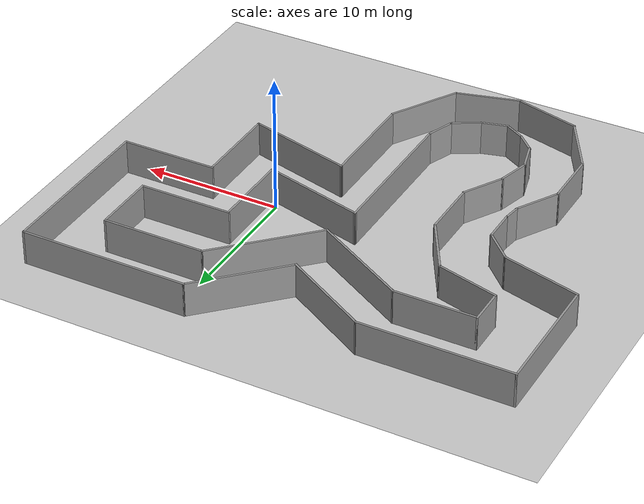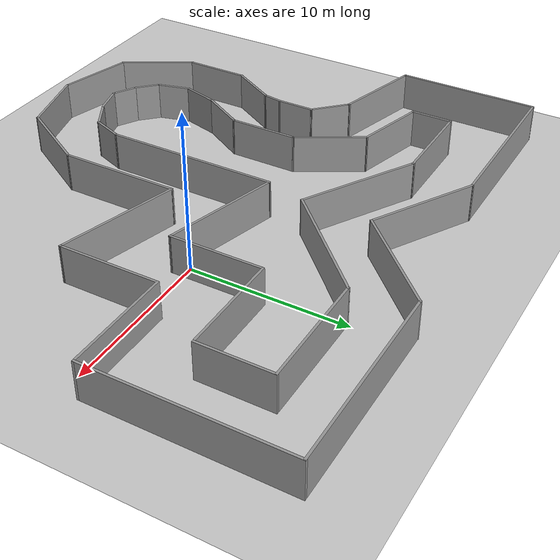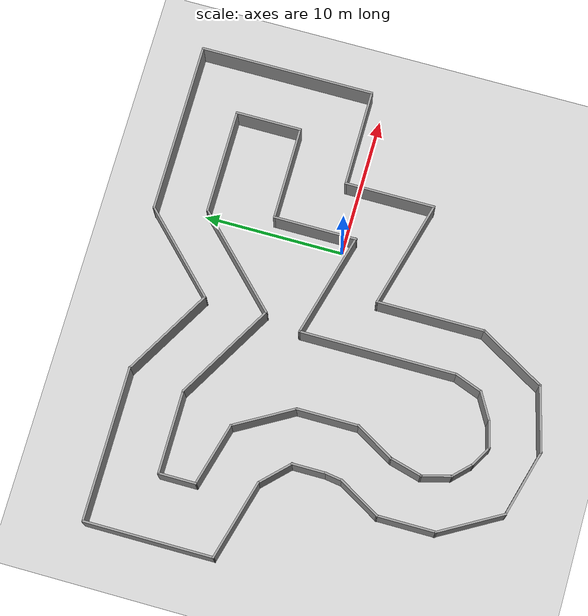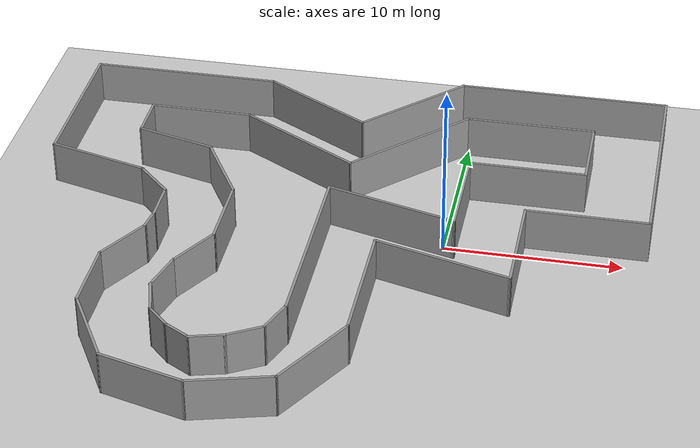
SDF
<sdf version="1.7">
 <world name="default">
  <model name="ground_plane">
   <static>1</static>
   <link name="link">
    <collision name="collision">
     <geometry><plane><normal>0 0 1</normal><size>100 100</size></plane></geometry>
     <surface><friction><ode><mu>100</mu><mu2>50</mu2></ode></friction></surface>
    </collision>
    <visual name="visual">
     <cast_shadows>0</cast_shadows>
     <geometry><plane><normal>0 0 1</normal><size>100 100</size></plane></geometry>
     <material>
      <script><uri>file://media/materials/scripts/gazebo.material</uri><name>Gazebo/Grey</name></script>
     </material>
    </visual>
   </link>
  </model>
  <model name="map2-Scaled2.5">
   <pose>-5.93751 -1.70962 0 0 -0 0</pose>
   <link name="Wall_39">
    <collision name="Wall_39_Collision">
     <geometry><box><size>6 0.15 2.5</size></box></geometry>
     <pose>0 0 1.25 0 -0 0</pose>
    </collision>
    <visual name="Wall_39_Visual">
     <pose>0 0 1.25 0 -0 0</pose>
     <geometry><box><size>6 0.15 2.5</size></box></geometry>
     <material>
      <script><uri>file://media/materials/scripts/gazebo.material</uri><name>Gazebo/Grey</name></script>
      <ambient>1 1 1 1</ambient>
     </material>
     <meta><layer>0</layer></meta>
    </visual>
    <pose>-14.3142 3.53465 0 0 -0 2.87979</pose>
   </link>
   <link name="Wall_40">
    <collision name="Wall_40_Collision">
     <geometry><box><size>9.25 0.15 2.5</size></box></geometry>
     <pose>0 0 1.25 0 -0 0</pose>
    </collision>
    <visual name="Wall_40_Visual">
     <pose>0 0 1.25 0 -0 0</pose>
     <geometry><box><size>9.25 0.15 2.5</size></box></geometry>
     <material>
      <script><uri>file://media/materials/scripts/gazebo.material</uri><name>Gazebo/Grey</name></script>
      <ambient>1 1 1 1</ambient>
     </material>
     <meta><layer>0</layer></meta>
    </visual>
    <pose>-17.1396 8.8417 0 0 -0 1.5708</pose>
   </link>
   <link name="Wall_41">
    <collision name="Wall_41_Collision">
     <geometry><box><size>11 0.15 2.5</size></box></geometry>
     <pose>0 0 1.25 0 -0 0</pose>
    </collision>
    <visual name="Wall_41_Visual">
     <pose>0 0 1.25 0 -0 0</pose>
     <geometry><box><size>11 0.15 2.5</size></box></geometry>
     <material>
      <script><uri>file://media/materials/scripts/gazebo.material</uri><name>Gazebo/Grey</name></script>
      <ambient>1 1 1 1</ambient>
     </material>
     <meta><layer>0</layer></meta>
    </visual>
    <pose>-11.7146 13.3917 0 0 -0 0</pose>
   </link>
   <link name="Wall_42">
    <collision name="Wall_42_Collision">
     <geometry><box><size>7.25 0.15 2.5</size></box></geometry>
     <pose>0 0 1.25 0 -0 0</pose>
    </collision>
    <visual name="Wall_42_Visual">
     <pose>0 0 1.25 0 -0 0</pose>
     <geometry><box><size>7.25 0.15 2.5</size></box></geometry>
     <material>
      <script><uri>file://media/materials/scripts/gazebo.material</uri><name>Gazebo/Grey</name></script>
      <ambient>1 1 1 1</ambient>
     </material>
     <meta><layer>0</layer></meta>
    </visual>
    <pose>-3.21519 11.6167 0 0 -0 -0.523599</pose>
   </link>
   <link name="Wall_43">
    <collision name="Wall_43_Collision">
     <geometry><box><size>7.5 0.15 2.5</size></box></geometry>
     <pose>0 0 1.25 0 -0 0</pose>
    </collision>
    <visual name="Wall_43_Visual">
     <pose>0 0 1.25 0 -0 0</pose>
     <geometry><box><size>7.5 0.15 2.5</size></box></geometry>
     <material>
      <script><uri>file://media/materials/scripts/gazebo.material</uri><name>Gazebo/Grey</name></script>
      <ambient>1 1 1 1</ambient>
     </material>
     <meta><layer>0</layer></meta>
    </visual>
    <pose>2.45782 12.4403 0 0 -0 0.785398</pose>
   </link>
   <link name="Wall_44">
    <collision name="Wall_44_Collision">
     <geometry><box><size>12.25 0.15 2.5</size></box></geometry>
     <pose>0 0 1.25 0 -0 0</pose>
    </collision>
    <visual name="Wall_44_Visual">
     <pose>0 0 1.25 0 -0 0</pose>
     <geometry><box><size>12.25 0.15 2.5</size></box></geometry>
     <material>
      <script><uri>file://media/materials/scripts/gazebo.material</uri><name>Gazebo/Grey</name></script>
      <ambient>1 1 1 1</ambient>
     </material>
     <meta><layer>0</layer></meta>
    </visual>
    <pose>11.1064 15.0389 0 0 -0 0</pose>
   </link>
   <link name="Wall_45">
    <collision name="Wall_45_Collision">
     <geometry><box><size>12.5 0.15 2.5</size></box></geometry>
     <pose>0 0 1.25 0 -0 0</pose>
    </collision>
    <visual name="Wall_45_Visual">
     <pose>0 0 1.25 0 -0 0</pose>
     <geometry><box><size>12.5 0.15 2.5</size></box></geometry>
     <material>
      <script><uri>file://media/materials/scripts/gazebo.material</uri><name>Gazebo/Grey</name></script>
      <ambient>1 1 1 1</ambient>
     </material>
     <meta><layer>0</layer></meta>
    </visual>
    <pose>17.1564 8.86393 0 0 -0 -1.5708</pose>
   </link>
   <link name="Wall_46">
    <collision name="Wall_46_Collision">
     <geometry><box><size>7 0.15 2.5</size></box></geometry>
     <pose>0 0 1.25 0 -0 0</pose>
    </collision>
    <visual name="Wall_46_Visual">
     <pose>0 0 1.25 0 -0 0</pose>
     <geometry><box><size>7 0.15 2.5</size></box></geometry>
     <material>
      <script><uri>file://media/materials/scripts/gazebo.material</uri><name>Gazebo/Grey</name></script>
      <ambient>1 1 1 1</ambient>
     </material>
     <meta><layer>0</layer></meta>
    </visual>
    <pose>13.7314 2.68893 0 0 -0 3.14159</pose>
   </link>
   <link name="Wall_47">
    <collision name="Wall_47_Collision">
     <geometry><box><size>6.5 0.15 2.5</size></box></geometry>
     <pose>0 0 1.25 0 -0 0</pose>
    </collision>
    <visual name="Wall_47_Visual">
     <pose>0 0 1.25 0 -0 0</pose>
     <geometry><box><size>6.5 0.15 2.5</size></box></geometry>
     <material>
      <script><uri>file://media/materials/scripts/gazebo.material</uri><name>Gazebo/Grey</name></script>
      <ambient>1 1 1 1</ambient>
     </material>
     <meta><layer>0</layer></meta>
    </visual>
    <pose>10.3064 -0.486068 0 0 -0 -1.5708</pose>
   </link>
   <link name="Wall_48">
    <collision name="Wall_48_Collision">
     <geometry><box><size>8 0.15 2.5</size></box></geometry>
     <pose>0 0 1.25 0 -0 0</pose>
    </collision>
    <visual name="Wall_48_Visual">
     <pose>0 0 1.25 0 -0 0</pose>
     <geometry><box><size>8 0.15 2.5</size></box></geometry>
     <material>
      <script><uri>file://media/materials/scripts/gazebo.material</uri><name>Gazebo/Grey</name></script>
      <ambient>1 1 1 1</ambient>
     </material>
     <meta><layer>0</layer></meta>
    </visual>
    <pose>6.51518 -2.6452 0 0 -0 2.87979</pose>
   </link>
   <link name="Wall_49">
    <collision name="Wall_49_Collision">
     <geometry><box><size>7.75 0.15 2.5</size></box></geometry>
     <pose>0 0 1.25 0 -0 0</pose>
    </collision>
    <visual name="Wall_49_Visual">
     <pose>0 0 1.25 0 -0 0</pose>
     <geometry><box><size>7.75 0.15 2.5</size></box></geometry>
     <material>
      <script><uri>file://media/materials/scripts/gazebo.material</uri><name>Gazebo/Grey</name></script>
      <ambient>1 1 1 1</ambient>
     </material>
     <meta><layer>0</layer></meta>
    </visual>
    <pose>2.72392 -5.42934 0 0 -0 -1.5708</pose>
   </link>
   <link name="Wall_50">
    <collision name="Wall_50_Collision">
     <geometry><box><size>5.5 0.15 2.5</size></box></geometry>
     <pose>0 0 1.25 0 -0 0</pose>
    </collision>
    <visual name="Wall_50_Visual">
     <pose>0 0 1.25 0 -0 0</pose>
     <geometry><box><size>5.5 0.15 2.5</size></box></geometry>
     <material>
      <script><uri>file://media/materials/scripts/gazebo.material</uri><name>Gazebo/Grey</name></script>
      <ambient>1 1 1 1</ambient>
     </material>
     <meta><layer>0</layer></meta>
    </visual>
    <pose>1.38642 -11.546 0 0 -0 -2.0944</pose>
   </link>
   <link name="Wall_51">
    <collision name="Wall_51_Collision">
     <geometry><box><size>4.75 0.15 2.5</size></box></geometry>
     <pose>0 0 1.25 0 -0 0</pose>
    </collision>
    <visual name="Wall_51_Visual">
     <pose>0 0 1.25 0 -0 0</pose>
     <geometry><box><size>4.75 0.15 2.5</size></box></geometry>
     <material>
      <script><uri>file://media/materials/scripts/gazebo.material</uri><name>Gazebo/Grey</name></script>
      <ambient>1 1 1 1</ambient>
     </material>
     <meta><layer>0</layer></meta>
    </visual>
    <pose>-2.17271 -14.4579 0 0 -0 -2.87979</pose>
   </link>
   <link name="Wall_52">
    <collision name="Wall_52_Collision">
     <geometry><box><size>5 0.15 2.5</size></box></geometry>
     <pose>0 0 1.25 0 -0 0</pose>
    </collision>
    <visual name="Wall_52_Visual">
     <pose>0 0 1.25 0 -0 0</pose>
     <geometry><box><size>5 0.15 2.5</size></box></geometry>
     <material>
      <script><uri>file://media/materials/scripts/gazebo.material</uri><name>Gazebo/Grey</name></script>
      <ambient>1 1 1 1</ambient>
     </material>
     <meta><layer>0</layer></meta>
    </visual>
    <pose>-6.73671 -14.4255 0 0 -0 2.87979</pose>
   </link>
   <link name="Wall_53">
    <collision name="Wall_53_Collision">
     <geometry><box><size>5 0.15 2.5</size></box></geometry>
     <pose>0 0 1.25 0 -0 0</pose>
    </collision>
    <visual name="Wall_53_Visual">
     <pose>0 0 1.25 0 -0 0</pose>
     <geometry><box><size>5 0.15 2.5</size></box></geometry>
     <material>
      <script><uri>file://media/materials/scripts/gazebo.material</uri><name>Gazebo/Grey</name></script>
      <ambient>1 1 1 1</ambient>
     </material>
     <meta><layer>0</layer></meta>
    </visual>
    <pose>-10.2916 -11.6978 0 0 -0 2.0944</pose>
   </link>
   <link name="Wall_54">
    <collision name="Wall_54_Collision">
     <geometry><box><size>4.25 0.15 2.5</size></box></geometry>
     <pose>0 0 1.25 0 -0 0</pose>
    </collision>
    <visual name="Wall_54_Visual">
     <pose>0 0 1.25 0 -0 0</pose>
     <geometry><box><size>4.25 0.15 2.5</size></box></geometry>
     <material>
      <script><uri>file://media/materials/scripts/gazebo.material</uri><name>Gazebo/Grey</name></script>
      <ambient>1 1 1 1</ambient>
     </material>
     <meta><layer>0</layer></meta>
    </visual>
    <pose>-11.5041 -7.54765 0 0 -0 1.5708</pose>
   </link>
   <link name="Wall_55">
    <collision name="Wall_55_Collision">
     <geometry><box><size>3.5 0.15 2.5</size></box></geometry>
     <pose>0 0 1.25 0 -0 0</pose>
    </collision>
    <visual name="Wall_55_Visual">
     <pose>0 0 1.25 0 -0 0</pose>
     <geometry><box><size>3.5 0.15 2.5</size></box></geometry>
     <material>
      <script><uri>file://media/materials/scripts/gazebo.material</uri><name>Gazebo/Grey</name></script>
      <ambient>1 1 1 1</ambient>
     </material>
     <meta><layer>0</layer></meta>
    </visual>
    <pose>-10.6666 -4.04705 0 0 -0 1.0472</pose>
   </link>
   <link name="Wall_57">
    <collision name="Wall_57_Collision">
     <geometry><box><size>3.25 0.15 2.5</size></box></geometry>
     <pose>0 0 1.25 0 -0 0</pose>
    </collision>
    <visual name="Wall_57_Visual">
     <pose>0 0 1.25 0 -0 0</pose>
     <geometry><box><size>3.25 0.15 2.5</size></box></geometry>
     <material>
      <script><uri>file://media/materials/scripts/gazebo.material</uri><name>Gazebo/Grey</name></script>
      <ambient>1 1 1 1</ambient>
     </material>
     <meta><layer>0</layer></meta>
    </visual>
    <pose>-6.71391 -4.04005 0 0 -0 1.0472</pose>
   </link>
   <link name="Wall_58">
    <collision name="Wall_58_Collision">
     <geometry><box><size>4.5 0.15 2.5</size></box></geometry>
     <pose>0 0 1.25 0 -0 0</pose>
    </collision>
    <visual name="Wall_58_Visual">
     <pose>0 0 1.25 0 -0 0</pose>
     <geometry><box><size>4.5 0.15 2.5</size></box></geometry>
     <material>
      <script><uri>file://media/materials/scripts/gazebo.material</uri><name>Gazebo/Grey</name></script>
      <ambient>1 1 1 1</ambient>
     </material>
     <meta><layer>0</layer></meta>
    </visual>
    <pose>-5.93891 -0.522716 0 0 -0 1.5708</pose>
   </link>
   <link name="Wall_59">
    <collision name="Wall_59_Collision">
     <geometry><box><size>4.75 0.15 2.5</size></box></geometry>
     <pose>0 0 1.25 0 -0 0</pose>
    </collision>
    <visual name="Wall_59_Visual">
     <pose>0 0 1.25 0 -0 0</pose>
     <geometry><box><size>4.75 0.15 2.5</size></box></geometry>
     <material>
      <script><uri>file://media/materials/scripts/gazebo.material</uri><name>Gazebo/Grey</name></script>
      <ambient>1 1 1 1</ambient>
     </material>
     <meta><layer>0</layer></meta>
    </visual>
    <pose>-7.08891 3.64414 0 0 -0 2.0944</pose>
   </link>
   <link name="Wall_60">
    <collision name="Wall_60_Collision">
     <geometry><box><size>4.75 0.15 2.5</size></box></geometry>
     <pose>0 0 1.25 0 -0 0</pose>
    </collision>
    <visual name="Wall_60_Visual">
     <pose>0 0 1.25 0 -0 0</pose>
     <geometry><box><size>4.75 0.15 2.5</size></box></geometry>
     <material>
      <script><uri>file://media/materials/scripts/gazebo.material</uri><name>Gazebo/Grey</name></script>
      <ambient>1 1 1 1</ambient>
     </material>
     <meta><layer>0</layer></meta>
    </visual>
    <pose>-10.4605 6.23128 0 0 -0 2.87979</pose>
   </link>
   <link name="Wall_61">
    <collision name="Wall_61_Collision">
     <geometry><box><size>2.75 0.15 2.5</size></box></geometry>
     <pose>0 0 1.25 0 -0 0</pose>
    </collision>
    <visual name="Wall_61_Visual">
     <pose>0 0 1.25 0 -0 0</pose>
     <geometry><box><size>2.75 0.15 2.5</size></box></geometry>
     <material>
      <script><uri>file://media/materials/scripts/gazebo.material</uri><name>Gazebo/Grey</name></script>
      <ambient>1 1 1 1</ambient>
     </material>
     <meta><layer>0</layer></meta>
    </visual>
    <pose>-12.6822 8.12657 0 0 -0 1.5708</pose>
   </link>
   <link name="Wall_62">
    <collision name="Wall_62_Collision">
     <geometry><box><size>6 0.15 2.5</size></box></geometry>
     <pose>0 0 1.25 0 -0 0</pose>
    </collision>
    <visual name="Wall_62_Visual">
     <pose>0 0 1.25 0 -0 0</pose>
     <geometry><box><size>6 0.15 2.5</size></box></geometry>
     <material>
      <script><uri>file://media/materials/scripts/gazebo.material</uri><name>Gazebo/Grey</name></script>
      <ambient>1 1 1 1</ambient>
     </material>
     <meta><layer>0</layer></meta>
    </visual>
    <pose>-9.75717 9.42657 0 0 -0 0</pose>
   </link>
   <link name="Wall_63">
    <collision name="Wall_63_Collision">
     <geometry><box><size>8 0.15 2.5</size></box></geometry>
     <pose>0 0 1.25 0 -0 0</pose>
    </collision>
    <visual name="Wall_63_Visual">
     <pose>0 0 1.25 0 -0 0</pose>
     <geometry><box><size>8 0.15 2.5</size></box></geometry>
     <material>
      <script><uri>file://media/materials/scripts/gazebo.material</uri><name>Gazebo/Grey</name></script>
      <ambient>1 1 1 1</ambient>
     </material>
     <meta><layer>0</layer></meta>
    </visual>
    <pose>-3.43302 7.46407 0 0 -0 -0.523599</pose>
   </link>
   <link name="Wall_64">
    <collision name="Wall_64_Collision">
     <geometry><box><size>8.5 0.15 2.5</size></box></geometry>
     <pose>0 0 1.25 0 -0 0</pose>
    </collision>
    <visual name="Wall_64_Visual">
     <pose>0 0 1.25 0 -0 0</pose>
     <geometry><box><size>8.5 0.15 2.5</size></box></geometry>
     <material>
      <script><uri>file://media/materials/scripts/gazebo.material</uri><name>Gazebo/Grey</name></script>
      <ambient>1 1 1 1</ambient>
     </material>
     <meta><layer>0</layer></meta>
    </visual>
    <pose>2.9183 8.45374 0 0 -0 0.785398</pose>
   </link>
   <link name="Wall_65">
    <collision name="Wall_65_Collision">
     <geometry><box><size>7.5 0.15 2.5</size></box></geometry>
     <pose>0 0 1.25 0 -0 0</pose>
    </collision>
    <visual name="Wall_65_Visual">
     <pose>0 0 1.25 0 -0 0</pose>
     <geometry><box><size>7.5 0.15 2.5</size></box></geometry>
     <material>
      <script><uri>file://media/materials/scripts/gazebo.material</uri><name>Gazebo/Grey</name></script>
      <ambient>1 1 1 1</ambient>
     </material>
     <meta><layer>0</layer></meta>
    </visual>
    <pose>9.54547 11.4059 0 0 -0 0</pose>
   </link>
   <link name="Wall_66">
    <collision name="Wall_66_Collision">
     <geometry><box><size>4.75 0.15 2.5</size></box></geometry>
     <pose>0 0 1.25 0 -0 0</pose>
    </collision>
    <visual name="Wall_66_Visual">
     <pose>0 0 1.25 0 -0 0</pose>
     <geometry><box><size>4.75 0.15 2.5</size></box></geometry>
     <material>
      <script><uri>file://media/materials/scripts/gazebo.material</uri><name>Gazebo/Grey</name></script>
      <ambient>1 1 1 1</ambient>
     </material>
     <meta><layer>0</layer></meta>
    </visual>
    <pose>13.2205 9.10591 0 0 -0 -1.5708</pose>
   </link>
   <link name="Wall_67">
    <collision name="Wall_67_Collision">
     <geometry><box><size>6.75 0.15 2.5</size></box></geometry>
     <pose>0 0 1.25 0 -0 0</pose>
    </collision>
    <visual name="Wall_67_Visual">
     <pose>0 0 1.25 0 -0 0</pose>
     <geometry><box><size>6.75 0.15 2.5</size></box></geometry>
     <material>
      <script><uri>file://media/materials/scripts/gazebo.material</uri><name>Gazebo/Grey</name></script>
      <ambient>1 1 1 1</ambient>
     </material>
     <meta><layer>0</layer></meta>
    </visual>
    <pose>9.92047 6.80591 0 0 -0 3.14159</pose>
   </link>
   <link name="Wall_68">
    <collision name="Wall_68_Collision">
     <geometry><box><size>6 0.15 2.5</size></box></geometry>
     <pose>0 0 1.25 0 -0 0</pose>
    </collision>
    <visual name="Wall_68_Visual">
     <pose>0 0 1.25 0 -0 0</pose>
     <geometry><box><size>6 0.15 2.5</size></box></geometry>
     <material>
      <script><uri>file://media/materials/scripts/gazebo.material</uri><name>Gazebo/Grey</name></script>
      <ambient>1 1 1 1</ambient>
     </material>
     <meta><layer>0</layer></meta>
    </visual>
    <pose>6.62047 3.88091 0 0 -0 -1.5708</pose>
   </link>
   <link name="Wall_69">
    <collision name="Wall_69_Collision">
     <geometry><box><size>7.75 0.15 2.5</size></box></geometry>
     <pose>0 0 1.25 0 -0 0</pose>
    </collision>
    <visual name="Wall_69_Visual">
     <pose>0 0 1.25 0 -0 0</pose>
     <geometry><box><size>7.75 0.15 2.5</size></box></geometry>
     <material>
      <script><uri>file://media/materials/scripts/gazebo.material</uri><name>Gazebo/Grey</name></script>
      <ambient>1 1 1 1</ambient>
     </material>
     <meta><layer>0</layer></meta>
    </visual>
    <pose>2.94995 1.93942 0 0 -0 2.87979</pose>
   </link>
   <link name="Wall_70">
    <collision name="Wall_70_Collision">
     <geometry><box><size>11.25 0.15 2.5</size></box></geometry>
     <pose>0 0 1.25 0 -0 0</pose>
    </collision>
    <visual name="Wall_70_Visual">
     <pose>0 0 1.25 0 -0 0</pose>
     <geometry><box><size>11.25 0.15 2.5</size></box></geometry>
     <material>
      <script><uri>file://media/materials/scripts/gazebo.material</uri><name>Gazebo/Grey</name></script>
      <ambient>1 1 1 1</ambient>
     </material>
     <meta><layer>0</layer></meta>
    </visual>
    <pose>-0.720568 -2.62706 0 0 -0 -1.5708</pose>
   </link>
   <link name="Wall_72">
    <collision name="Wall_72_Collision">
     <geometry><box><size>2.75 0.15 2.5</size></box></geometry>
     <pose>0 0 1.25 0 -0 0</pose>
    </collision>
    <visual name="Wall_72_Visual">
     <pose>0 0 1.25 0 -0 0</pose>
     <geometry><box><size>2.75 0.15 2.5</size></box></geometry>
     <material>
      <script><uri>file://media/materials/scripts/gazebo.material</uri><name>Gazebo/Grey</name></script>
      <ambient>1 1 1 1</ambient>
     </material>
     <meta><layer>0</layer></meta>
    </visual>
    <pose>-10.5697 1.85837 0 0 -0 -0.785398</pose>
   </link>
   <link name="Wall_73">
    <collision name="Wall_73_Collision">
     <geometry><box><size>2.5 0.15 2.5</size></box></geometry>
     <pose>0 0 1.25 0 -0 0</pose>
    </collision>
    <visual name="Wall_73_Visual">
     <pose>0 0 1.25 0 -0 0</pose>
     <geometry><box><size>2.5 0.15 2.5</size></box></geometry>
     <material>
      <script><uri>file://media/materials/scripts/gazebo.material</uri><name>Gazebo/Grey</name></script>
      <ambient>1 1 1 1</ambient>
     </material>
     <meta><layer>0</layer></meta>
    </visual>
    <pose>-9.65044 -0.235872 0 0 -0 -1.5708</pose>
   </link>
   <link name="Wall_74">
    <collision name="Wall_74_Collision">
     <geometry><box><size>1.34897 0.15 2.5</size></box></geometry>
     <pose>0 0 1.25 0 -0 0</pose>
    </collision>
    <visual name="Wall_74_Visual">
     <pose>0 0 1.25 0 -0 0</pose>
     <geometry><box><size>1.34897 0.15 2.5</size></box></geometry>
     <material>
      <script><uri>file://media/materials/scripts/gazebo.material</uri><name>Gazebo/Grey</name></script>
      <ambient>1 1 1 1</ambient>
     </material>
     <meta><layer>0</layer></meta>
    </visual>
    <pose>-9.73976 -2.00367 0 0 -0 -1.72035</pose>
   </link>
   <link name="Wall_76">
    <collision name="Wall_76_Collision">
     <geometry><box><size>2.5 0.15 2.5</size></box></geometry>
     <pose>0 0 1.25 0 -0 0</pose>
    </collision>
    <visual name="Wall_76_Visual">
     <pose>0 0 1.25 0 -0 0</pose>
     <geometry><box><size>2.5 0.15 2.5</size></box></geometry>
     <material>
      <script><uri>file://media/materials/scripts/gazebo.material</uri><name>Gazebo/Grey</name></script>
      <ambient>1 1 1 1</ambient>
     </material>
     <meta><layer>0</layer></meta>
    </visual>
    <pose>-7.79303 -6.51736 0 0 -0 -1.8326</pose>
   </link>
   <link name="Wall_77">
    <collision name="Wall_77_Collision">
     <geometry><box><size>2.25 0.15 2.5</size></box></geometry>
     <pose>0 0 1.25 0 -0 0</pose>
    </collision>
    <visual name="Wall_77_Visual">
     <pose>0 0 1.25 0 -0 0</pose>
     <geometry><box><size>2.25 0.15 2.5</size></box></geometry>
     <material>
      <script><uri>file://media/materials/scripts/gazebo.material</uri><name>Gazebo/Grey</name></script>
      <ambient>1 1 1 1</ambient>
     </material>
     <meta><layer>0</layer></meta>
    </visual>
    <pose>-7.82538 -8.66654 0 0 -0 -1.309</pose>
   </link>
   <link name="Wall_78">
    <collision name="Wall_78_Collision">
     <geometry><box><size>1.75 0.15 2.5</size></box></geometry>
     <pose>0 0 1.25 0 -0 0</pose>
    </collision>
    <visual name="Wall_78_Visual">
     <pose>0 0 1.25 0 -0 0</pose>
     <geometry><box><size>1.75 0.15 2.5</size></box></geometry>
     <material>
      <script><uri>file://media/materials/scripts/gazebo.material</uri><name>Gazebo/Grey</name></script>
      <ambient>1 1 1 1</ambient>
     </material>
     <meta><layer>0</layer></meta>
    </visual>
    <pose>-6.98793 -10.2464 0 0 -0 -0.785398</pose>
   </link>
   <link name="Wall_79">
    <collision name="Wall_79_Collision">
     <geometry><box><size>1.75 0.15 2.5</size></box></geometry>
     <pose>0 0 1.25 0 -0 0</pose>
    </collision>
    <visual name="Wall_79_Visual">
     <pose>0 0 1.25 0 -0 0</pose>
     <geometry><box><size>1.75 0.15 2.5</size></box></geometry>
     <material>
      <script><uri>file://media/materials/scripts/gazebo.material</uri><name>Gazebo/Grey</name></script>
      <ambient>1 1 1 1</ambient>
     </material>
     <meta><layer>0</layer></meta>
    </visual>
    <pose>-5.72943 -11.2121 0 0 -0 -0.523599</pose>
   </link>
   <link name="Wall_80">
    <collision name="Wall_80_Collision">
     <geometry><box><size>2 0.15 2.5</size></box></geometry>
     <pose>0 0 1.25 0 -0 0</pose>
    </collision>
    <visual name="Wall_80_Visual">
     <pose>0 0 1.25 0 -0 0</pose>
     <geometry><box><size>2 0.15 2.5</size></box></geometry>
     <material>
      <script><uri>file://media/materials/scripts/gazebo.material</uri><name>Gazebo/Grey</name></script>
      <ambient>1 1 1 1</ambient>
     </material>
     <meta><layer>0</layer></meta>
    </visual>
    <pose>-4.14313 -11.3727 0 0 -0 0.261799</pose>
   </link>
   <link name="Wall_81">
    <collision name="Wall_81_Collision">
     <geometry><box><size>2.25 0.15 2.5</size></box></geometry>
     <pose>0 0 1.25 0 -0 0</pose>
    </collision>
    <visual name="Wall_81_Visual">
     <pose>0 0 1.25 0 -0 0</pose>
     <geometry><box><size>2.25 0.15 2.5</size></box></geometry>
     <material>
      <script><uri>file://media/materials/scripts/gazebo.material</uri><name>Gazebo/Grey</name></script>
      <ambient>1 1 1 1</ambient>
     </material>
     <meta><layer>0</layer></meta>
    </visual>
    <pose>-2.34032 -10.6083 0 0 -0 0.523599</pose>
   </link>
   <link name="Wall_82">
    <collision name="Wall_82_Collision">
     <geometry><box><size>2.18433 0.15 2.5</size></box></geometry>
     <pose>0 0 1.25 0 -0 0</pose>
    </collision>
    <visual name="Wall_82_Visual">
     <pose>0 0 1.25 0 -0 0</pose>
     <geometry><box><size>2.18433 0.15 2.5</size></box></geometry>
     <material>
      <script><uri>file://media/materials/scripts/gazebo.material</uri><name>Gazebo/Grey</name></script>
      <ambient>1 1 1 1</ambient>
     </material>
     <meta><layer>0</layer></meta>
    </visual>
    <pose>-1.07578 -9.13019 0 0 -0 1.21406</pose>
   </link>
   <static>1</static>
  </model>
 </world>
</sdf>
